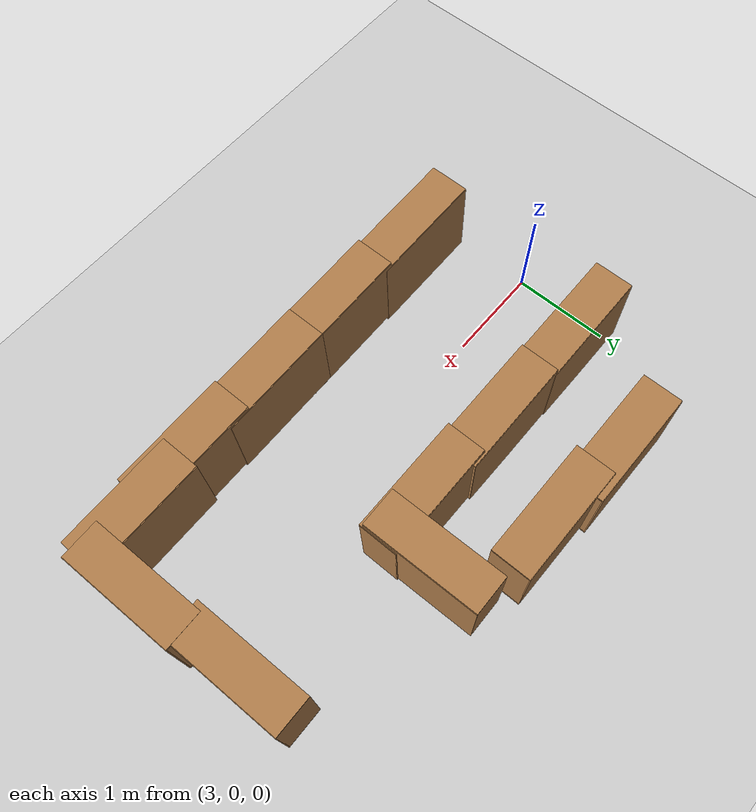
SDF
<sdf version="1.7">
 <world name="default">
  <model name="ground_plane">
   <static>1</static>
   <link name="link">
    <collision name="collision">
     <geometry><plane><normal>0 0 1</normal><size>100 100</size></plane></geometry>
     <surface>
      <contact><collide_bitmask>65535</collide_bitmask></contact>
      <friction><ode><mu>100</mu><mu2>50</mu2></ode></friction>
     </surface>
    </collision>
    <visual name="visual">
     <cast_shadows>0</cast_shadows>
     <geometry><plane><normal>0 0 1</normal><size>100 100</size></plane></geometry>
     <material>
      <script><uri>file://media/materials/scripts/gazebo.material</uri><name>Gazebo/Grey</name></script>
     </material>
    </visual>
   </link>
  </model>
  <model name="bookshelf_clone_2">
   <static>1</static>
   <link name="link">
    <inertial><mass>1</mass></inertial>
    <collision name="back">
     <pose>0 0.005 0.6 0 -0 0</pose>
     <geometry><box><size>0.9 0.01 1.2</size></box></geometry>
    </collision>
    <visual name="visual1">
     <pose>0 0.005 0.6 0 -0 0</pose>
     <geometry><box><size>0.9 0.01 1.2</size></box></geometry>
     <material>
      <script><uri>file://media/materials/scripts/gazebo.material</uri><name>Gazebo/Wood</name></script>
     </material>
    </visual>
    <collision name="left_side">
     <pose>0.45 -0.195 0.6 0 -0 0</pose>
     <geometry><box><size>0.02 0.4 1.2</size></box></geometry>
    </collision>
    <visual name="visual2">
     <pose>0.45 -0.195 0.6 0 -0 0</pose>
     <geometry><box><size>0.02 0.4 1.2</size></box></geometry>
     <material>
      <script><uri>file://media/materials/scripts/gazebo.material</uri><name>Gazebo/Wood</name></script>
     </material>
    </visual>
    <collision name="right_side">
     <pose>-0.45 -0.195 0.6 0 -0 0</pose>
     <geometry><box><size>0.02 0.4 1.2</size></box></geometry>
    </collision>
    <visual name="visual3">
     <pose>-0.45 -0.195 0.6 0 -0 0</pose>
     <geometry><box><size>0.02 0.4 1.2</size></box></geometry>
     <material>
      <script><uri>file://media/materials/scripts/gazebo.material</uri><name>Gazebo/Wood</name></script>
     </material>
    </visual>
    <collision name="bottom">
     <pose>0 -0.195 0.03 0 -0 0</pose>
     <geometry><box><size>0.88 0.4 0.06</size></box></geometry>
    </collision>
    <visual name="visual4">
     <pose>0 -0.195 0.03 0 -0 0</pose>
     <geometry><box><size>0.88 0.4 0.06</size></box></geometry>
     <material>
      <script><uri>file://media/materials/scripts/gazebo.material</uri><name>Gazebo/Wood</name></script>
     </material>
    </visual>
    <collision name="top">
     <pose>0 -0.195 1.19 0 -0 0</pose>
     <geometry><box><size>0.88 0.4 0.02</size></box></geometry>
    </collision>
    <visual name="visual5">
     <pose>0 -0.195 1.19 0 -0 0</pose>
     <geometry><box><size>0.88 0.4 0.02</size></box></geometry>
     <material>
      <script><uri>file://media/materials/scripts/gazebo.material</uri><name>Gazebo/Wood</name></script>
     </material>
    </visual>
    <collision name="low_shelf">
     <pose>0 -0.195 0.43 0 -0 0</pose>
     <geometry><box><size>0.88 0.4 0.02</size></box></geometry>
    </collision>
    <visual name="visual6">
     <pose>0 -0.195 0.43 0 -0 0</pose>
     <geometry><box><size>0.88 0.4 0.02</size></box></geometry>
     <material>
      <script><uri>file://media/materials/scripts/gazebo.material</uri><name>Gazebo/Wood</name></script>
     </material>
    </visual>
    <collision name="high_shelf">
     <pose>0 -0.195 0.8 0 -0 0</pose>
     <geometry><box><size>0.88 0.4 0.02</size></box></geometry>
    </collision>
    <visual name="visual7">
     <pose>0 -0.195 0.8 0 -0 0</pose>
     <geometry><box><size>0.88 0.4 0.02</size></box></geometry>
     <material>
      <script><uri>file://media/materials/scripts/gazebo.material</uri><name>Gazebo/Wood</name></script>
     </material>
    </visual>
   </link>
   <pose>2.91076 1.0694 0.469198 3.1373 1.52729 3.13696</pose>
  </model>
  <model name="bookshelf_clone_3">
   <static>1</static>
   <link name="link">
    <inertial><mass>1</mass></inertial>
    <collision name="back">
     <pose>0 0.005 0.6 0 -0 0</pose>
     <geometry><box><size>0.9 0.01 1.2</size></box></geometry>
    </collision>
    <visual name="visual1">
     <pose>0 0.005 0.6 0 -0 0</pose>
     <geometry><box><size>0.9 0.01 1.2</size></box></geometry>
     <material>
      <script><uri>file://media/materials/scripts/gazebo.material</uri><name>Gazebo/Wood</name></script>
     </material>
    </visual>
    <collision name="left_side">
     <pose>0.45 -0.195 0.6 0 -0 0</pose>
     <geometry><box><size>0.02 0.4 1.2</size></box></geometry>
    </collision>
    <visual name="visual2">
     <pose>0.45 -0.195 0.6 0 -0 0</pose>
     <geometry><box><size>0.02 0.4 1.2</size></box></geometry>
     <material>
      <script><uri>file://media/materials/scripts/gazebo.material</uri><name>Gazebo/Wood</name></script>
     </material>
    </visual>
    <collision name="right_side">
     <pose>-0.45 -0.195 0.6 0 -0 0</pose>
     <geometry><box><size>0.02 0.4 1.2</size></box></geometry>
    </collision>
    <visual name="visual3">
     <pose>-0.45 -0.195 0.6 0 -0 0</pose>
     <geometry><box><size>0.02 0.4 1.2</size></box></geometry>
     <material>
      <script><uri>file://media/materials/scripts/gazebo.material</uri><name>Gazebo/Wood</name></script>
     </material>
    </visual>
    <collision name="bottom">
     <pose>0 -0.195 0.03 0 -0 0</pose>
     <geometry><box><size>0.88 0.4 0.06</size></box></geometry>
    </collision>
    <visual name="visual4">
     <pose>0 -0.195 0.03 0 -0 0</pose>
     <geometry><box><size>0.88 0.4 0.06</size></box></geometry>
     <material>
      <script><uri>file://media/materials/scripts/gazebo.material</uri><name>Gazebo/Wood</name></script>
     </material>
    </visual>
    <collision name="top">
     <pose>0 -0.195 1.19 0 -0 0</pose>
     <geometry><box><size>0.88 0.4 0.02</size></box></geometry>
    </collision>
    <visual name="visual5">
     <pose>0 -0.195 1.19 0 -0 0</pose>
     <geometry><box><size>0.88 0.4 0.02</size></box></geometry>
     <material>
      <script><uri>file://media/materials/scripts/gazebo.material</uri><name>Gazebo/Wood</name></script>
     </material>
    </visual>
    <collision name="low_shelf">
     <pose>0 -0.195 0.43 0 -0 0</pose>
     <geometry><box><size>0.88 0.4 0.02</size></box></geometry>
    </collision>
    <visual name="visual6">
     <pose>0 -0.195 0.43 0 -0 0</pose>
     <geometry><box><size>0.88 0.4 0.02</size></box></geometry>
     <material>
      <script><uri>file://media/materials/scripts/gazebo.material</uri><name>Gazebo/Wood</name></script>
     </material>
    </visual>
    <collision name="high_shelf">
     <pose>0 -0.195 0.8 0 -0 0</pose>
     <geometry><box><size>0.88 0.4 0.02</size></box></geometry>
    </collision>
    <visual name="visual7">
     <pose>0 -0.195 0.8 0 -0 0</pose>
     <geometry><box><size>0.88 0.4 0.02</size></box></geometry>
     <material>
      <script><uri>file://media/materials/scripts/gazebo.material</uri><name>Gazebo/Wood</name></script>
     </material>
    </visual>
   </link>
   <pose>4.07605 1.06263 0.469198 3.1373 1.52729 3.13696</pose>
  </model>
  <model name="bookshelf_clone_4">
   <static>1</static>
   <link name="link">
    <inertial><mass>1</mass></inertial>
    <collision name="back">
     <pose>0 0.005 0.6 0 -0 0</pose>
     <geometry><box><size>0.9 0.01 1.2</size></box></geometry>
    </collision>
    <visual name="visual1">
     <pose>0 0.005 0.6 0 -0 0</pose>
     <geometry><box><size>0.9 0.01 1.2</size></box></geometry>
     <material>
      <script><uri>file://media/materials/scripts/gazebo.material</uri><name>Gazebo/Wood</name></script>
     </material>
    </visual>
    <collision name="left_side">
     <pose>0.45 -0.195 0.6 0 -0 0</pose>
     <geometry><box><size>0.02 0.4 1.2</size></box></geometry>
    </collision>
    <visual name="visual2">
     <pose>0.45 -0.195 0.6 0 -0 0</pose>
     <geometry><box><size>0.02 0.4 1.2</size></box></geometry>
     <material>
      <script><uri>file://media/materials/scripts/gazebo.material</uri><name>Gazebo/Wood</name></script>
     </material>
    </visual>
    <collision name="right_side">
     <pose>-0.45 -0.195 0.6 0 -0 0</pose>
     <geometry><box><size>0.02 0.4 1.2</size></box></geometry>
    </collision>
    <visual name="visual3">
     <pose>-0.45 -0.195 0.6 0 -0 0</pose>
     <geometry><box><size>0.02 0.4 1.2</size></box></geometry>
     <material>
      <script><uri>file://media/materials/scripts/gazebo.material</uri><name>Gazebo/Wood</name></script>
     </material>
    </visual>
    <collision name="bottom">
     <pose>0 -0.195 0.03 0 -0 0</pose>
     <geometry><box><size>0.88 0.4 0.06</size></box></geometry>
    </collision>
    <visual name="visual4">
     <pose>0 -0.195 0.03 0 -0 0</pose>
     <geometry><box><size>0.88 0.4 0.06</size></box></geometry>
     <material>
      <script><uri>file://media/materials/scripts/gazebo.material</uri><name>Gazebo/Wood</name></script>
     </material>
    </visual>
    <collision name="top">
     <pose>0 -0.195 1.19 0 -0 0</pose>
     <geometry><box><size>0.88 0.4 0.02</size></box></geometry>
    </collision>
    <visual name="visual5">
     <pose>0 -0.195 1.19 0 -0 0</pose>
     <geometry><box><size>0.88 0.4 0.02</size></box></geometry>
     <material>
      <script><uri>file://media/materials/scripts/gazebo.material</uri><name>Gazebo/Wood</name></script>
     </material>
    </visual>
    <collision name="low_shelf">
     <pose>0 -0.195 0.43 0 -0 0</pose>
     <geometry><box><size>0.88 0.4 0.02</size></box></geometry>
    </collision>
    <visual name="visual6">
     <pose>0 -0.195 0.43 0 -0 0</pose>
     <geometry><box><size>0.88 0.4 0.02</size></box></geometry>
     <material>
      <script><uri>file://media/materials/scripts/gazebo.material</uri><name>Gazebo/Wood</name></script>
     </material>
    </visual>
    <collision name="high_shelf">
     <pose>0 -0.195 0.8 0 -0 0</pose>
     <geometry><box><size>0.88 0.4 0.02</size></box></geometry>
    </collision>
    <visual name="visual7">
     <pose>0 -0.195 0.8 0 -0 0</pose>
     <geometry><box><size>0.88 0.4 0.02</size></box></geometry>
     <material>
      <script><uri>file://media/materials/scripts/gazebo.material</uri><name>Gazebo/Wood</name></script>
     </material>
    </visual>
   </link>
   <pose>5.12004 1.03939 0.469198 3.1373 1.52729 3.13696</pose>
  </model>
  <model name="bookshelf_clone_clone_clone_2">
   <static>1</static>
   <link name="link">
    <inertial><mass>1</mass></inertial>
    <collision name="back">
     <pose>0 0.005 0.6 0 -0 0</pose>
     <geometry><box><size>0.9 0.01 1.2</size></box></geometry>
    </collision>
    <visual name="visual1">
     <pose>0 0.005 0.6 0 -0 0</pose>
     <geometry><box><size>0.9 0.01 1.2</size></box></geometry>
     <material>
      <script><uri>file://media/materials/scripts/gazebo.material</uri><name>Gazebo/Wood</name></script>
     </material>
    </visual>
    <collision name="left_side">
     <pose>0.45 -0.195 0.6 0 -0 0</pose>
     <geometry><box><size>0.02 0.4 1.2</size></box></geometry>
    </collision>
    <visual name="visual2">
     <pose>0.45 -0.195 0.6 0 -0 0</pose>
     <geometry><box><size>0.02 0.4 1.2</size></box></geometry>
     <material>
      <script><uri>file://media/materials/scripts/gazebo.material</uri><name>Gazebo/Wood</name></script>
     </material>
    </visual>
    <collision name="right_side">
     <pose>-0.45 -0.195 0.6 0 -0 0</pose>
     <geometry><box><size>0.02 0.4 1.2</size></box></geometry>
    </collision>
    <visual name="visual3">
     <pose>-0.45 -0.195 0.6 0 -0 0</pose>
     <geometry><box><size>0.02 0.4 1.2</size></box></geometry>
     <material>
      <script><uri>file://media/materials/scripts/gazebo.material</uri><name>Gazebo/Wood</name></script>
     </material>
    </visual>
    <collision name="bottom">
     <pose>0 -0.195 0.03 0 -0 0</pose>
     <geometry><box><size>0.88 0.4 0.06</size></box></geometry>
    </collision>
    <visual name="visual4">
     <pose>0 -0.195 0.03 0 -0 0</pose>
     <geometry><box><size>0.88 0.4 0.06</size></box></geometry>
     <material>
      <script><uri>file://media/materials/scripts/gazebo.material</uri><name>Gazebo/Wood</name></script>
     </material>
    </visual>
    <collision name="top">
     <pose>0 -0.195 1.19 0 -0 0</pose>
     <geometry><box><size>0.88 0.4 0.02</size></box></geometry>
    </collision>
    <visual name="visual5">
     <pose>0 -0.195 1.19 0 -0 0</pose>
     <geometry><box><size>0.88 0.4 0.02</size></box></geometry>
     <material>
      <script><uri>file://media/materials/scripts/gazebo.material</uri><name>Gazebo/Wood</name></script>
     </material>
    </visual>
    <collision name="low_shelf">
     <pose>0 -0.195 0.43 0 -0 0</pose>
     <geometry><box><size>0.88 0.4 0.02</size></box></geometry>
    </collision>
    <visual name="visual6">
     <pose>0 -0.195 0.43 0 -0 0</pose>
     <geometry><box><size>0.88 0.4 0.02</size></box></geometry>
     <material>
      <script><uri>file://media/materials/scripts/gazebo.material</uri><name>Gazebo/Wood</name></script>
     </material>
    </visual>
    <collision name="high_shelf">
     <pose>0 -0.195 0.8 0 -0 0</pose>
     <geometry><box><size>0.88 0.4 0.02</size></box></geometry>
    </collision>
    <visual name="visual7">
     <pose>0 -0.195 0.8 0 -0 0</pose>
     <geometry><box><size>0.88 0.4 0.02</size></box></geometry>
     <material>
      <script><uri>file://media/materials/scripts/gazebo.material</uri><name>Gazebo/Wood</name></script>
     </material>
    </visual>
   </link>
   <pose>3.07146 -0.782007 0.531222 3.1373 1.52729 3.13696</pose>
  </model>
  <model name="bookshelf_clone_clone_clone_3">
   <static>1</static>
   <link name="link">
    <inertial><mass>1</mass></inertial>
    <collision name="back">
     <pose>0 0.005 0.6 0 -0 0</pose>
     <geometry><box><size>0.9 0.01 1.2</size></box></geometry>
    </collision>
    <visual name="visual1">
     <pose>0 0.005 0.6 0 -0 0</pose>
     <geometry><box><size>0.9 0.01 1.2</size></box></geometry>
     <material>
      <script><uri>file://media/materials/scripts/gazebo.material</uri><name>Gazebo/Wood</name></script>
     </material>
    </visual>
    <collision name="left_side">
     <pose>0.45 -0.195 0.6 0 -0 0</pose>
     <geometry><box><size>0.02 0.4 1.2</size></box></geometry>
    </collision>
    <visual name="visual2">
     <pose>0.45 -0.195 0.6 0 -0 0</pose>
     <geometry><box><size>0.02 0.4 1.2</size></box></geometry>
     <material>
      <script><uri>file://media/materials/scripts/gazebo.material</uri><name>Gazebo/Wood</name></script>
     </material>
    </visual>
    <collision name="right_side">
     <pose>-0.45 -0.195 0.6 0 -0 0</pose>
     <geometry><box><size>0.02 0.4 1.2</size></box></geometry>
    </collision>
    <visual name="visual3">
     <pose>-0.45 -0.195 0.6 0 -0 0</pose>
     <geometry><box><size>0.02 0.4 1.2</size></box></geometry>
     <material>
      <script><uri>file://media/materials/scripts/gazebo.material</uri><name>Gazebo/Wood</name></script>
     </material>
    </visual>
    <collision name="bottom">
     <pose>0 -0.195 0.03 0 -0 0</pose>
     <geometry><box><size>0.88 0.4 0.06</size></box></geometry>
    </collision>
    <visual name="visual4">
     <pose>0 -0.195 0.03 0 -0 0</pose>
     <geometry><box><size>0.88 0.4 0.06</size></box></geometry>
     <material>
      <script><uri>file://media/materials/scripts/gazebo.material</uri><name>Gazebo/Wood</name></script>
     </material>
    </visual>
    <collision name="top">
     <pose>0 -0.195 1.19 0 -0 0</pose>
     <geometry><box><size>0.88 0.4 0.02</size></box></geometry>
    </collision>
    <visual name="visual5">
     <pose>0 -0.195 1.19 0 -0 0</pose>
     <geometry><box><size>0.88 0.4 0.02</size></box></geometry>
     <material>
      <script><uri>file://media/materials/scripts/gazebo.material</uri><name>Gazebo/Wood</name></script>
     </material>
    </visual>
    <collision name="low_shelf">
     <pose>0 -0.195 0.43 0 -0 0</pose>
     <geometry><box><size>0.88 0.4 0.02</size></box></geometry>
    </collision>
    <visual name="visual6">
     <pose>0 -0.195 0.43 0 -0 0</pose>
     <geometry><box><size>0.88 0.4 0.02</size></box></geometry>
     <material>
      <script><uri>file://media/materials/scripts/gazebo.material</uri><name>Gazebo/Wood</name></script>
     </material>
    </visual>
    <collision name="high_shelf">
     <pose>0 -0.195 0.8 0 -0 0</pose>
     <geometry><box><size>0.88 0.4 0.02</size></box></geometry>
    </collision>
    <visual name="visual7">
     <pose>0 -0.195 0.8 0 -0 0</pose>
     <geometry><box><size>0.88 0.4 0.02</size></box></geometry>
     <material>
      <script><uri>file://media/materials/scripts/gazebo.material</uri><name>Gazebo/Wood</name></script>
     </material>
    </visual>
   </link>
   <pose>4.1959 -0.786375 0.531222 3.1373 1.52729 3.13696</pose>
  </model>
  <model name="bookshelf_clone_clone_clone_4">
   <static>1</static>
   <link name="link">
    <inertial><mass>1</mass></inertial>
    <collision name="back">
     <pose>0 0.005 0.6 0 -0 0</pose>
     <geometry><box><size>0.9 0.01 1.2</size></box></geometry>
    </collision>
    <visual name="visual1">
     <pose>0 0.005 0.6 0 -0 0</pose>
     <geometry><box><size>0.9 0.01 1.2</size></box></geometry>
     <material>
      <script><uri>file://media/materials/scripts/gazebo.material</uri><name>Gazebo/Wood</name></script>
     </material>
    </visual>
    <collision name="left_side">
     <pose>0.45 -0.195 0.6 0 -0 0</pose>
     <geometry><box><size>0.02 0.4 1.2</size></box></geometry>
    </collision>
    <visual name="visual2">
     <pose>0.45 -0.195 0.6 0 -0 0</pose>
     <geometry><box><size>0.02 0.4 1.2</size></box></geometry>
     <material>
      <script><uri>file://media/materials/scripts/gazebo.material</uri><name>Gazebo/Wood</name></script>
     </material>
    </visual>
    <collision name="right_side">
     <pose>-0.45 -0.195 0.6 0 -0 0</pose>
     <geometry><box><size>0.02 0.4 1.2</size></box></geometry>
    </collision>
    <visual name="visual3">
     <pose>-0.45 -0.195 0.6 0 -0 0</pose>
     <geometry><box><size>0.02 0.4 1.2</size></box></geometry>
     <material>
      <script><uri>file://media/materials/scripts/gazebo.material</uri><name>Gazebo/Wood</name></script>
     </material>
    </visual>
    <collision name="bottom">
     <pose>0 -0.195 0.03 0 -0 0</pose>
     <geometry><box><size>0.88 0.4 0.06</size></box></geometry>
    </collision>
    <visual name="visual4">
     <pose>0 -0.195 0.03 0 -0 0</pose>
     <geometry><box><size>0.88 0.4 0.06</size></box></geometry>
     <material>
      <script><uri>file://media/materials/scripts/gazebo.material</uri><name>Gazebo/Wood</name></script>
     </material>
    </visual>
    <collision name="top">
     <pose>0 -0.195 1.19 0 -0 0</pose>
     <geometry><box><size>0.88 0.4 0.02</size></box></geometry>
    </collision>
    <visual name="visual5">
     <pose>0 -0.195 1.19 0 -0 0</pose>
     <geometry><box><size>0.88 0.4 0.02</size></box></geometry>
     <material>
      <script><uri>file://media/materials/scripts/gazebo.material</uri><name>Gazebo/Wood</name></script>
     </material>
    </visual>
    <collision name="low_shelf">
     <pose>0 -0.195 0.43 0 -0 0</pose>
     <geometry><box><size>0.88 0.4 0.02</size></box></geometry>
    </collision>
    <visual name="visual6">
     <pose>0 -0.195 0.43 0 -0 0</pose>
     <geometry><box><size>0.88 0.4 0.02</size></box></geometry>
     <material>
      <script><uri>file://media/materials/scripts/gazebo.material</uri><name>Gazebo/Wood</name></script>
     </material>
    </visual>
    <collision name="high_shelf">
     <pose>0 -0.195 0.8 0 -0 0</pose>
     <geometry><box><size>0.88 0.4 0.02</size></box></geometry>
    </collision>
    <visual name="visual7">
     <pose>0 -0.195 0.8 0 -0 0</pose>
     <geometry><box><size>0.88 0.4 0.02</size></box></geometry>
     <material>
      <script><uri>file://media/materials/scripts/gazebo.material</uri><name>Gazebo/Wood</name></script>
     </material>
    </visual>
   </link>
   <pose>5.18438 -0.771863 0.531222 3.1373 1.52729 3.13696</pose>
  </model>
  <model name="bookshelf_clone_clone_clone_5_clone_0">
   <static>1</static>
   <link name="link">
    <inertial><mass>1</mass></inertial>
    <collision name="back">
     <pose>0 0.005 0.6 0 -0 0</pose>
     <geometry><box><size>0.9 0.01 1.2</size></box></geometry>
    </collision>
    <visual name="visual1">
     <pose>0 0.005 0.6 0 -0 0</pose>
     <geometry><box><size>0.9 0.01 1.2</size></box></geometry>
     <material>
      <script><uri>file://media/materials/scripts/gazebo.material</uri><name>Gazebo/Wood</name></script>
     </material>
    </visual>
    <collision name="left_side">
     <pose>0.45 -0.195 0.6 0 -0 0</pose>
     <geometry><box><size>0.02 0.4 1.2</size></box></geometry>
    </collision>
    <visual name="visual2">
     <pose>0.45 -0.195 0.6 0 -0 0</pose>
     <geometry><box><size>0.02 0.4 1.2</size></box></geometry>
     <material>
      <script><uri>file://media/materials/scripts/gazebo.material</uri><name>Gazebo/Wood</name></script>
     </material>
    </visual>
    <collision name="right_side">
     <pose>-0.45 -0.195 0.6 0 -0 0</pose>
     <geometry><box><size>0.02 0.4 1.2</size></box></geometry>
    </collision>
    <visual name="visual3">
     <pose>-0.45 -0.195 0.6 0 -0 0</pose>
     <geometry><box><size>0.02 0.4 1.2</size></box></geometry>
     <material>
      <script><uri>file://media/materials/scripts/gazebo.material</uri><name>Gazebo/Wood</name></script>
     </material>
    </visual>
    <collision name="bottom">
     <pose>0 -0.195 0.03 0 -0 0</pose>
     <geometry><box><size>0.88 0.4 0.06</size></box></geometry>
    </collision>
    <visual name="visual4">
     <pose>0 -0.195 0.03 0 -0 0</pose>
     <geometry><box><size>0.88 0.4 0.06</size></box></geometry>
     <material>
      <script><uri>file://media/materials/scripts/gazebo.material</uri><name>Gazebo/Wood</name></script>
     </material>
    </visual>
    <collision name="top">
     <pose>0 -0.195 1.19 0 -0 0</pose>
     <geometry><box><size>0.88 0.4 0.02</size></box></geometry>
    </collision>
    <visual name="visual5">
     <pose>0 -0.195 1.19 0 -0 0</pose>
     <geometry><box><size>0.88 0.4 0.02</size></box></geometry>
     <material>
      <script><uri>file://media/materials/scripts/gazebo.material</uri><name>Gazebo/Wood</name></script>
     </material>
    </visual>
    <collision name="low_shelf">
     <pose>0 -0.195 0.43 0 -0 0</pose>
     <geometry><box><size>0.88 0.4 0.02</size></box></geometry>
    </collision>
    <visual name="visual6">
     <pose>0 -0.195 0.43 0 -0 0</pose>
     <geometry><box><size>0.88 0.4 0.02</size></box></geometry>
     <material>
      <script><uri>file://media/materials/scripts/gazebo.material</uri><name>Gazebo/Wood</name></script>
     </material>
    </visual>
    <collision name="high_shelf">
     <pose>0 -0.195 0.8 0 -0 0</pose>
     <geometry><box><size>0.88 0.4 0.02</size></box></geometry>
    </collision>
    <visual name="visual7">
     <pose>0 -0.195 0.8 0 -0 0</pose>
     <geometry><box><size>0.88 0.4 0.02</size></box></geometry>
     <material>
      <script><uri>file://media/materials/scripts/gazebo.material</uri><name>Gazebo/Wood</name></script>
     </material>
    </visual>
   </link>
   <pose>6.292 1.87692 0.482938 -1.58898 1.52729 3.13696</pose>
  </model>
  <model name="bookshelf_clone_clone_clone_5_clone_2">
   <static>1</static>
   <link name="link">
    <inertial><mass>1</mass></inertial>
    <collision name="back">
     <pose>0 0.005 0.6 0 -0 0</pose>
     <geometry><box><size>0.9 0.01 1.2</size></box></geometry>
    </collision>
    <visual name="visual1">
     <pose>0 0.005 0.6 0 -0 0</pose>
     <geometry><box><size>0.9 0.01 1.2</size></box></geometry>
     <material>
      <script><uri>file://media/materials/scripts/gazebo.material</uri><name>Gazebo/Wood</name></script>
     </material>
    </visual>
    <collision name="left_side">
     <pose>0.45 -0.195 0.6 0 -0 0</pose>
     <geometry><box><size>0.02 0.4 1.2</size></box></geometry>
    </collision>
    <visual name="visual2">
     <pose>0.45 -0.195 0.6 0 -0 0</pose>
     <geometry><box><size>0.02 0.4 1.2</size></box></geometry>
     <material>
      <script><uri>file://media/materials/scripts/gazebo.material</uri><name>Gazebo/Wood</name></script>
     </material>
    </visual>
    <collision name="right_side">
     <pose>-0.45 -0.195 0.6 0 -0 0</pose>
     <geometry><box><size>0.02 0.4 1.2</size></box></geometry>
    </collision>
    <visual name="visual3">
     <pose>-0.45 -0.195 0.6 0 -0 0</pose>
     <geometry><box><size>0.02 0.4 1.2</size></box></geometry>
     <material>
      <script><uri>file://media/materials/scripts/gazebo.material</uri><name>Gazebo/Wood</name></script>
     </material>
    </visual>
    <collision name="bottom">
     <pose>0 -0.195 0.03 0 -0 0</pose>
     <geometry><box><size>0.88 0.4 0.06</size></box></geometry>
    </collision>
    <visual name="visual4">
     <pose>0 -0.195 0.03 0 -0 0</pose>
     <geometry><box><size>0.88 0.4 0.06</size></box></geometry>
     <material>
      <script><uri>file://media/materials/scripts/gazebo.material</uri><name>Gazebo/Wood</name></script>
     </material>
    </visual>
    <collision name="top">
     <pose>0 -0.195 1.19 0 -0 0</pose>
     <geometry><box><size>0.88 0.4 0.02</size></box></geometry>
    </collision>
    <visual name="visual5">
     <pose>0 -0.195 1.19 0 -0 0</pose>
     <geometry><box><size>0.88 0.4 0.02</size></box></geometry>
     <material>
      <script><uri>file://media/materials/scripts/gazebo.material</uri><name>Gazebo/Wood</name></script>
     </material>
    </visual>
    <collision name="low_shelf">
     <pose>0 -0.195 0.43 0 -0 0</pose>
     <geometry><box><size>0.88 0.4 0.02</size></box></geometry>
    </collision>
    <visual name="visual6">
     <pose>0 -0.195 0.43 0 -0 0</pose>
     <geometry><box><size>0.88 0.4 0.02</size></box></geometry>
     <material>
      <script><uri>file://media/materials/scripts/gazebo.material</uri><name>Gazebo/Wood</name></script>
     </material>
    </visual>
    <collision name="high_shelf">
     <pose>0 -0.195 0.8 0 -0 0</pose>
     <geometry><box><size>0.88 0.4 0.02</size></box></geometry>
    </collision>
    <visual name="visual7">
     <pose>0 -0.195 0.8 0 -0 0</pose>
     <geometry><box><size>0.88 0.4 0.02</size></box></geometry>
     <material>
      <script><uri>file://media/materials/scripts/gazebo.material</uri><name>Gazebo/Wood</name></script>
     </material>
    </visual>
   </link>
   <pose>8.09522 0.177478 0.482938 -1.58898 1.52729 3.13696</pose>
  </model>
  <model name="bookshelf_clone_clone_clone_5_clone_3">
   <static>1</static>
   <link name="link">
    <inertial><mass>1</mass></inertial>
    <collision name="back">
     <pose>0 0.005 0.6 0 -0 0</pose>
     <geometry><box><size>0.9 0.01 1.2</size></box></geometry>
    </collision>
    <visual name="visual1">
     <pose>0 0.005 0.6 0 -0 0</pose>
     <geometry><box><size>0.9 0.01 1.2</size></box></geometry>
     <material>
      <script><uri>file://media/materials/scripts/gazebo.material</uri><name>Gazebo/Wood</name></script>
     </material>
    </visual>
    <collision name="left_side">
     <pose>0.45 -0.195 0.6 0 -0 0</pose>
     <geometry><box><size>0.02 0.4 1.2</size></box></geometry>
    </collision>
    <visual name="visual2">
     <pose>0.45 -0.195 0.6 0 -0 0</pose>
     <geometry><box><size>0.02 0.4 1.2</size></box></geometry>
     <material>
      <script><uri>file://media/materials/scripts/gazebo.material</uri><name>Gazebo/Wood</name></script>
     </material>
    </visual>
    <collision name="right_side">
     <pose>-0.45 -0.195 0.6 0 -0 0</pose>
     <geometry><box><size>0.02 0.4 1.2</size></box></geometry>
    </collision>
    <visual name="visual3">
     <pose>-0.45 -0.195 0.6 0 -0 0</pose>
     <geometry><box><size>0.02 0.4 1.2</size></box></geometry>
     <material>
      <script><uri>file://media/materials/scripts/gazebo.material</uri><name>Gazebo/Wood</name></script>
     </material>
    </visual>
    <collision name="bottom">
     <pose>0 -0.195 0.03 0 -0 0</pose>
     <geometry><box><size>0.88 0.4 0.06</size></box></geometry>
    </collision>
    <visual name="visual4">
     <pose>0 -0.195 0.03 0 -0 0</pose>
     <geometry><box><size>0.88 0.4 0.06</size></box></geometry>
     <material>
      <script><uri>file://media/materials/scripts/gazebo.material</uri><name>Gazebo/Wood</name></script>
     </material>
    </visual>
    <collision name="top">
     <pose>0 -0.195 1.19 0 -0 0</pose>
     <geometry><box><size>0.88 0.4 0.02</size></box></geometry>
    </collision>
    <visual name="visual5">
     <pose>0 -0.195 1.19 0 -0 0</pose>
     <geometry><box><size>0.88 0.4 0.02</size></box></geometry>
     <material>
      <script><uri>file://media/materials/scripts/gazebo.material</uri><name>Gazebo/Wood</name></script>
     </material>
    </visual>
    <collision name="low_shelf">
     <pose>0 -0.195 0.43 0 -0 0</pose>
     <geometry><box><size>0.88 0.4 0.02</size></box></geometry>
    </collision>
    <visual name="visual6">
     <pose>0 -0.195 0.43 0 -0 0</pose>
     <geometry><box><size>0.88 0.4 0.02</size></box></geometry>
     <material>
      <script><uri>file://media/materials/scripts/gazebo.material</uri><name>Gazebo/Wood</name></script>
     </material>
    </visual>
    <collision name="high_shelf">
     <pose>0 -0.195 0.8 0 -0 0</pose>
     <geometry><box><size>0.88 0.4 0.02</size></box></geometry>
    </collision>
    <visual name="visual7">
     <pose>0 -0.195 0.8 0 -0 0</pose>
     <geometry><box><size>0.88 0.4 0.02</size></box></geometry>
     <material>
      <script><uri>file://media/materials/scripts/gazebo.material</uri><name>Gazebo/Wood</name></script>
     </material>
    </visual>
   </link>
   <pose>8.02683 1.28732 0.482938 -1.58898 1.52729 3.13696</pose>
  </model>
  <model name="bookshelf_clone_clone_clone_4_clone">
   <static>1</static>
   <link name="link">
    <inertial><mass>1</mass></inertial>
    <collision name="back">
     <pose>0 0.005 0.6 0 -0 0</pose>
     <geometry><box><size>0.9 0.01 1.2</size></box></geometry>
    </collision>
    <visual name="visual1">
     <pose>0 0.005 0.6 0 -0 0</pose>
     <geometry><box><size>0.9 0.01 1.2</size></box></geometry>
     <material>
      <script><uri>file://media/materials/scripts/gazebo.material</uri><name>Gazebo/Wood</name></script>
     </material>
    </visual>
    <collision name="left_side">
     <pose>0.45 -0.195 0.6 0 -0 0</pose>
     <geometry><box><size>0.02 0.4 1.2</size></box></geometry>
    </collision>
    <visual name="visual2">
     <pose>0.45 -0.195 0.6 0 -0 0</pose>
     <geometry><box><size>0.02 0.4 1.2</size></box></geometry>
     <material>
      <script><uri>file://media/materials/scripts/gazebo.material</uri><name>Gazebo/Wood</name></script>
     </material>
    </visual>
    <collision name="right_side">
     <pose>-0.45 -0.195 0.6 0 -0 0</pose>
     <geometry><box><size>0.02 0.4 1.2</size></box></geometry>
    </collision>
    <visual name="visual3">
     <pose>-0.45 -0.195 0.6 0 -0 0</pose>
     <geometry><box><size>0.02 0.4 1.2</size></box></geometry>
     <material>
      <script><uri>file://media/materials/scripts/gazebo.material</uri><name>Gazebo/Wood</name></script>
     </material>
    </visual>
    <collision name="bottom">
     <pose>0 -0.195 0.03 0 -0 0</pose>
     <geometry><box><size>0.88 0.4 0.06</size></box></geometry>
    </collision>
    <visual name="visual4">
     <pose>0 -0.195 0.03 0 -0 0</pose>
     <geometry><box><size>0.88 0.4 0.06</size></box></geometry>
     <material>
      <script><uri>file://media/materials/scripts/gazebo.material</uri><name>Gazebo/Wood</name></script>
     </material>
    </visual>
    <collision name="top">
     <pose>0 -0.195 1.19 0 -0 0</pose>
     <geometry><box><size>0.88 0.4 0.02</size></box></geometry>
    </collision>
    <visual name="visual5">
     <pose>0 -0.195 1.19 0 -0 0</pose>
     <geometry><box><size>0.88 0.4 0.02</size></box></geometry>
     <material>
      <script><uri>file://media/materials/scripts/gazebo.material</uri><name>Gazebo/Wood</name></script>
     </material>
    </visual>
    <collision name="low_shelf">
     <pose>0 -0.195 0.43 0 -0 0</pose>
     <geometry><box><size>0.88 0.4 0.02</size></box></geometry>
    </collision>
    <visual name="visual6">
     <pose>0 -0.195 0.43 0 -0 0</pose>
     <geometry><box><size>0.88 0.4 0.02</size></box></geometry>
     <material>
      <script><uri>file://media/materials/scripts/gazebo.material</uri><name>Gazebo/Wood</name></script>
     </material>
    </visual>
    <collision name="high_shelf">
     <pose>0 -0.195 0.8 0 -0 0</pose>
     <geometry><box><size>0.88 0.4 0.02</size></box></geometry>
    </collision>
    <visual name="visual7">
     <pose>0 -0.195 0.8 0 -0 0</pose>
     <geometry><box><size>0.88 0.4 0.02</size></box></geometry>
     <material>
      <script><uri>file://media/materials/scripts/gazebo.material</uri><name>Gazebo/Wood</name></script>
     </material>
    </visual>
   </link>
   <pose>6.15092 -0.777255 0.531222 3.1373 1.52729 3.13696</pose>
  </model>
  <model name="bookshelf_clone_clone_clone_4_clone_0">
   <static>1</static>
   <link name="link">
    <inertial><mass>1</mass></inertial>
    <collision name="back">
     <pose>0 0.005 0.6 0 -0 0</pose>
     <geometry><box><size>0.9 0.01 1.2</size></box></geometry>
    </collision>
    <visual name="visual1">
     <pose>0 0.005 0.6 0 -0 0</pose>
     <geometry><box><size>0.9 0.01 1.2</size></box></geometry>
     <material>
      <script><uri>file://media/materials/scripts/gazebo.material</uri><name>Gazebo/Wood</name></script>
     </material>
    </visual>
    <collision name="left_side">
     <pose>0.45 -0.195 0.6 0 -0 0</pose>
     <geometry><box><size>0.02 0.4 1.2</size></box></geometry>
    </collision>
    <visual name="visual2">
     <pose>0.45 -0.195 0.6 0 -0 0</pose>
     <geometry><box><size>0.02 0.4 1.2</size></box></geometry>
     <material>
      <script><uri>file://media/materials/scripts/gazebo.material</uri><name>Gazebo/Wood</name></script>
     </material>
    </visual>
    <collision name="right_side">
     <pose>-0.45 -0.195 0.6 0 -0 0</pose>
     <geometry><box><size>0.02 0.4 1.2</size></box></geometry>
    </collision>
    <visual name="visual3">
     <pose>-0.45 -0.195 0.6 0 -0 0</pose>
     <geometry><box><size>0.02 0.4 1.2</size></box></geometry>
     <material>
      <script><uri>file://media/materials/scripts/gazebo.material</uri><name>Gazebo/Wood</name></script>
     </material>
    </visual>
    <collision name="bottom">
     <pose>0 -0.195 0.03 0 -0 0</pose>
     <geometry><box><size>0.88 0.4 0.06</size></box></geometry>
    </collision>
    <visual name="visual4">
     <pose>0 -0.195 0.03 0 -0 0</pose>
     <geometry><box><size>0.88 0.4 0.06</size></box></geometry>
     <material>
      <script><uri>file://media/materials/scripts/gazebo.material</uri><name>Gazebo/Wood</name></script>
     </material>
    </visual>
    <collision name="top">
     <pose>0 -0.195 1.19 0 -0 0</pose>
     <geometry><box><size>0.88 0.4 0.02</size></box></geometry>
    </collision>
    <visual name="visual5">
     <pose>0 -0.195 1.19 0 -0 0</pose>
     <geometry><box><size>0.88 0.4 0.02</size></box></geometry>
     <material>
      <script><uri>file://media/materials/scripts/gazebo.material</uri><name>Gazebo/Wood</name></script>
     </material>
    </visual>
    <collision name="low_shelf">
     <pose>0 -0.195 0.43 0 -0 0</pose>
     <geometry><box><size>0.88 0.4 0.02</size></box></geometry>
    </collision>
    <visual name="visual6">
     <pose>0 -0.195 0.43 0 -0 0</pose>
     <geometry><box><size>0.88 0.4 0.02</size></box></geometry>
     <material>
      <script><uri>file://media/materials/scripts/gazebo.material</uri><name>Gazebo/Wood</name></script>
     </material>
    </visual>
    <collision name="high_shelf">
     <pose>0 -0.195 0.8 0 -0 0</pose>
     <geometry><box><size>0.88 0.4 0.02</size></box></geometry>
    </collision>
    <visual name="visual7">
     <pose>0 -0.195 0.8 0 -0 0</pose>
     <geometry><box><size>0.88 0.4 0.02</size></box></geometry>
     <material>
      <script><uri>file://media/materials/scripts/gazebo.material</uri><name>Gazebo/Wood</name></script>
     </material>
    </visual>
   </link>
   <pose>6.83748 -0.726629 0.531222 3.1373 1.52729 3.13696</pose>
  </model>
  <model name="bookshelf_clone_clone_clone_4_clone_5_clone">
   <static>1</static>
   <link name="link">
    <inertial><mass>1</mass></inertial>
    <collision name="back">
     <pose>0 0.005 0.6 0 -0 0</pose>
     <geometry><box><size>0.9 0.01 1.2</size></box></geometry>
    </collision>
    <visual name="visual1">
     <pose>0 0.005 0.6 0 -0 0</pose>
     <geometry><box><size>0.9 0.01 1.2</size></box></geometry>
     <material>
      <script><uri>file://media/materials/scripts/gazebo.material</uri><name>Gazebo/Wood</name></script>
     </material>
    </visual>
    <collision name="left_side">
     <pose>0.45 -0.195 0.6 0 -0 0</pose>
     <geometry><box><size>0.02 0.4 1.2</size></box></geometry>
    </collision>
    <visual name="visual2">
     <pose>0.45 -0.195 0.6 0 -0 0</pose>
     <geometry><box><size>0.02 0.4 1.2</size></box></geometry>
     <material>
      <script><uri>file://media/materials/scripts/gazebo.material</uri><name>Gazebo/Wood</name></script>
     </material>
    </visual>
    <collision name="right_side">
     <pose>-0.45 -0.195 0.6 0 -0 0</pose>
     <geometry><box><size>0.02 0.4 1.2</size></box></geometry>
    </collision>
    <visual name="visual3">
     <pose>-0.45 -0.195 0.6 0 -0 0</pose>
     <geometry><box><size>0.02 0.4 1.2</size></box></geometry>
     <material>
      <script><uri>file://media/materials/scripts/gazebo.material</uri><name>Gazebo/Wood</name></script>
     </material>
    </visual>
    <collision name="bottom">
     <pose>0 -0.195 0.03 0 -0 0</pose>
     <geometry><box><size>0.88 0.4 0.06</size></box></geometry>
    </collision>
    <visual name="visual4">
     <pose>0 -0.195 0.03 0 -0 0</pose>
     <geometry><box><size>0.88 0.4 0.06</size></box></geometry>
     <material>
      <script><uri>file://media/materials/scripts/gazebo.material</uri><name>Gazebo/Wood</name></script>
     </material>
    </visual>
    <collision name="top">
     <pose>0 -0.195 1.19 0 -0 0</pose>
     <geometry><box><size>0.88 0.4 0.02</size></box></geometry>
    </collision>
    <visual name="visual5">
     <pose>0 -0.195 1.19 0 -0 0</pose>
     <geometry><box><size>0.88 0.4 0.02</size></box></geometry>
     <material>
      <script><uri>file://media/materials/scripts/gazebo.material</uri><name>Gazebo/Wood</name></script>
     </material>
    </visual>
    <collision name="low_shelf">
     <pose>0 -0.195 0.43 0 -0 0</pose>
     <geometry><box><size>0.88 0.4 0.02</size></box></geometry>
    </collision>
    <visual name="visual6">
     <pose>0 -0.195 0.43 0 -0 0</pose>
     <geometry><box><size>0.88 0.4 0.02</size></box></geometry>
     <material>
      <script><uri>file://media/materials/scripts/gazebo.material</uri><name>Gazebo/Wood</name></script>
     </material>
    </visual>
    <collision name="high_shelf">
     <pose>0 -0.195 0.8 0 -0 0</pose>
     <geometry><box><size>0.88 0.4 0.02</size></box></geometry>
    </collision>
    <visual name="visual7">
     <pose>0 -0.195 0.8 0 -0 0</pose>
     <geometry><box><size>0.88 0.4 0.02</size></box></geometry>
     <material>
      <script><uri>file://media/materials/scripts/gazebo.material</uri><name>Gazebo/Wood</name></script>
     </material>
    </visual>
   </link>
   <pose>4.5989 2.02504 0.531222 3.1373 1.52729 3.13696</pose>
  </model>
  <model name="bookshelf_clone_clone_clone_4_clone_5_clone_0">
   <static>1</static>
   <link name="link">
    <inertial><mass>1</mass></inertial>
    <collision name="back">
     <pose>0 0.005 0.6 0 -0 0</pose>
     <geometry><box><size>0.9 0.01 1.2</size></box></geometry>
    </collision>
    <visual name="visual1">
     <pose>0 0.005 0.6 0 -0 0</pose>
     <geometry><box><size>0.9 0.01 1.2</size></box></geometry>
     <material>
      <script><uri>file://media/materials/scripts/gazebo.material</uri><name>Gazebo/Wood</name></script>
     </material>
    </visual>
    <collision name="left_side">
     <pose>0.45 -0.195 0.6 0 -0 0</pose>
     <geometry><box><size>0.02 0.4 1.2</size></box></geometry>
    </collision>
    <visual name="visual2">
     <pose>0.45 -0.195 0.6 0 -0 0</pose>
     <geometry><box><size>0.02 0.4 1.2</size></box></geometry>
     <material>
      <script><uri>file://media/materials/scripts/gazebo.material</uri><name>Gazebo/Wood</name></script>
     </material>
    </visual>
    <collision name="right_side">
     <pose>-0.45 -0.195 0.6 0 -0 0</pose>
     <geometry><box><size>0.02 0.4 1.2</size></box></geometry>
    </collision>
    <visual name="visual3">
     <pose>-0.45 -0.195 0.6 0 -0 0</pose>
     <geometry><box><size>0.02 0.4 1.2</size></box></geometry>
     <material>
      <script><uri>file://media/materials/scripts/gazebo.material</uri><name>Gazebo/Wood</name></script>
     </material>
    </visual>
    <collision name="bottom">
     <pose>0 -0.195 0.03 0 -0 0</pose>
     <geometry><box><size>0.88 0.4 0.06</size></box></geometry>
    </collision>
    <visual name="visual4">
     <pose>0 -0.195 0.03 0 -0 0</pose>
     <geometry><box><size>0.88 0.4 0.06</size></box></geometry>
     <material>
      <script><uri>file://media/materials/scripts/gazebo.material</uri><name>Gazebo/Wood</name></script>
     </material>
    </visual>
    <collision name="top">
     <pose>0 -0.195 1.19 0 -0 0</pose>
     <geometry><box><size>0.88 0.4 0.02</size></box></geometry>
    </collision>
    <visual name="visual5">
     <pose>0 -0.195 1.19 0 -0 0</pose>
     <geometry><box><size>0.88 0.4 0.02</size></box></geometry>
     <material>
      <script><uri>file://media/materials/scripts/gazebo.material</uri><name>Gazebo/Wood</name></script>
     </material>
    </visual>
    <collision name="low_shelf">
     <pose>0 -0.195 0.43 0 -0 0</pose>
     <geometry><box><size>0.88 0.4 0.02</size></box></geometry>
    </collision>
    <visual name="visual6">
     <pose>0 -0.195 0.43 0 -0 0</pose>
     <geometry><box><size>0.88 0.4 0.02</size></box></geometry>
     <material>
      <script><uri>file://media/materials/scripts/gazebo.material</uri><name>Gazebo/Wood</name></script>
     </material>
    </visual>
    <collision name="high_shelf">
     <pose>0 -0.195 0.8 0 -0 0</pose>
     <geometry><box><size>0.88 0.4 0.02</size></box></geometry>
    </collision>
    <visual name="visual7">
     <pose>0 -0.195 0.8 0 -0 0</pose>
     <geometry><box><size>0.88 0.4 0.02</size></box></geometry>
     <material>
      <script><uri>file://media/materials/scripts/gazebo.material</uri><name>Gazebo/Wood</name></script>
     </material>
    </visual>
   </link>
   <pose>3.6597 2.08551 0.531222 3.1373 1.52729 3.13696</pose>
  </model>
 </world>
</sdf>
